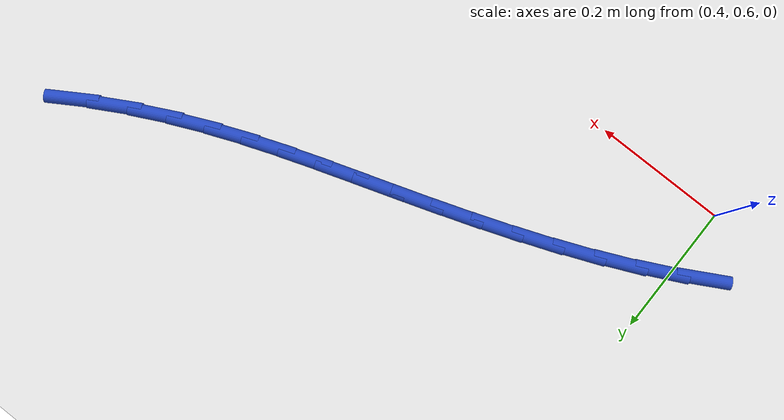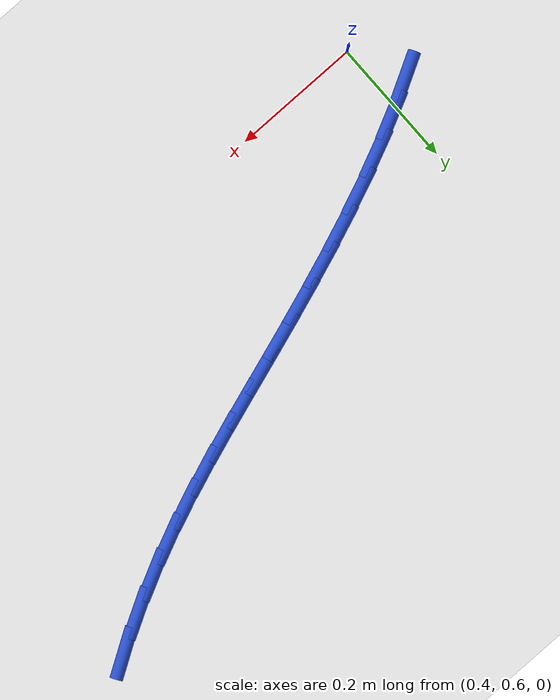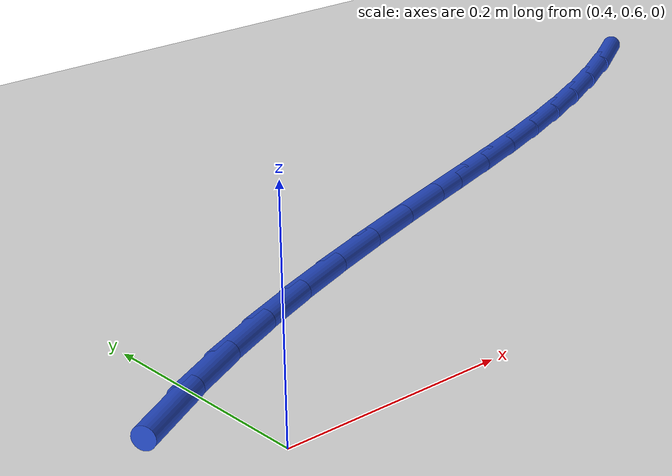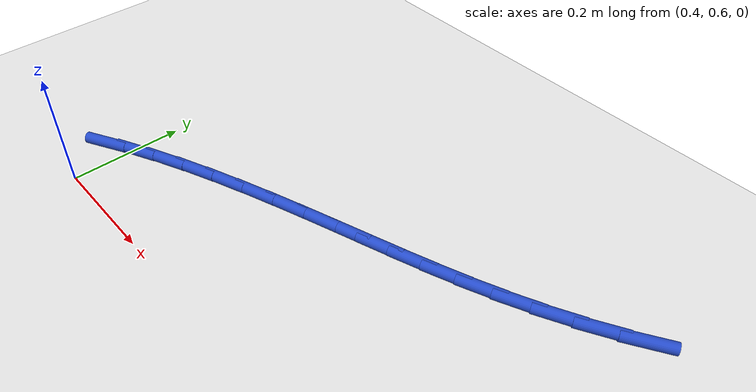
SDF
<sdf version="1.6">
 <world name="default">
  <model name="ground_plane">
   <static>1</static>
   <link name="link">
    <collision name="collision">
     <geometry><plane><normal>0 0 1</normal><size>100 100</size></plane></geometry>
     <surface><friction><ode><mu>100</mu><mu2>50</mu2></ode></friction></surface>
    </collision>
    <visual name="visual">
     <cast_shadows>0</cast_shadows>
     <geometry><plane><normal>0 0 1</normal><size>100 100</size></plane></geometry>
     <material>
      <script><uri>file://media/materials/scripts/gazebo.material</uri><name>Gazebo/WhiteGlow</name></script>
     </material>
    </visual>
   </link>
  </model>
  <model name="line">
   <link name="link_14">
    <pose>0.3600606070345783 0.6843756821959995 0.01 0 1.57 0.5044888558073787</pose>
    <collision name="collision">
     <geometry><cylinder><radius>0.01</radius><length>0.08</length></cylinder></geometry>
    </collision>
    <visual name="visual">
     <material>
      <script><name>Gazebo/Blue</name><uri>file://media/materials/scripts/gazebo.material</uri></script>
     </material>
     <geometry><cylinder><radius>0.01</radius><length>0.08</length></cylinder></geometry>
    </visual>
   </link>
   <link name="link_15">
    <pose>0.4126002058019281 0.7133851797736082 0.01 0 1.57 0.4594383404274867</pose>
    <collision name="collision">
     <geometry><cylinder><radius>0.01</radius><length>0.08</length></cylinder></geometry>
    </collision>
    <visual name="visual">
     <material>
      <script><name>Gazebo/Blue</name><uri>file://media/materials/scripts/gazebo.material</uri></script>
     </material>
     <geometry><cylinder><radius>0.01</radius><length>0.08</length></cylinder></geometry>
    </visual>
   </link>
   <link name="link_16">
    <pose>0.4669219397732638 0.7402608268987017 0.01 0 1.57 0.42151512069455105</pose>
    <collision name="collision">
     <geometry><cylinder><radius>0.01</radius><length>0.08</length></cylinder></geometry>
    </collision>
    <visual name="visual">
     <material>
      <script><name>Gazebo/Blue</name><uri>file://media/materials/scripts/gazebo.material</uri></script>
     </material>
     <geometry><cylinder><radius>0.01</radius><length>0.08</length></cylinder></geometry>
    </visual>
   </link>
   <link name="link_17">
    <pose>0.522577299692662 0.7652161924397977 0.01 0 1.57 0.3901121384482348</pose>
    <collision name="collision">
     <geometry><cylinder><radius>0.01</radius><length>0.08</length></cylinder></geometry>
    </collision>
    <visual name="visual">
     <material>
      <script><name>Gazebo/Blue</name><uri>file://media/materials/scripts/gazebo.material</uri></script>
     </material>
     <geometry><cylinder><radius>0.01</radius><length>0.08</length></cylinder></geometry>
    </visual>
   </link>
   <link name="link_18">
    <pose>0.579117776304199 0.7884648452654139 0.01 0 1.57 0.364744347148214</pose>
    <collision name="collision">
     <geometry><cylinder><radius>0.01</radius><length>0.08</length></cylinder></geometry>
    </collision>
    <visual name="visual">
     <material>
      <script><name>Gazebo/Blue</name><uri>file://media/materials/scripts/gazebo.material</uri></script>
     </material>
     <geometry><cylinder><radius>0.01</radius><length>0.08</length></cylinder></geometry>
    </visual>
   </link>
   <link name="link_19">
    <pose>0.6360948603519516 0.8102203542440687 0.01 0 1.57 0.3450654763592388</pose>
    <collision name="collision">
     <geometry><cylinder><radius>0.01</radius><length>0.08</length></cylinder></geometry>
    </collision>
    <visual name="visual">
     <material>
      <script><name>Gazebo/Blue</name><uri>file://media/materials/scripts/gazebo.material</uri></script>
     </material>
     <geometry><cylinder><radius>0.01</radius><length>0.08</length></cylinder></geometry>
    </visual>
   </link>
   <link name="link_20">
    <pose>0.693060042579996 0.8306962882442795 0.01 0 1.57 0.3308810109781415</pose>
    <collision name="collision">
     <geometry><cylinder><radius>0.01</radius><length>0.08</length></cylinder></geometry>
    </collision>
    <visual name="visual">
     <material>
      <script><name>Gazebo/Blue</name><uri>file://media/materials/scripts/gazebo.material</uri></script>
     </material>
     <geometry><cylinder><radius>0.01</radius><length>0.08</length></cylinder></geometry>
    </visual>
   </link>
   <link name="link_21">
    <pose>0.7495648137324091 0.8501062161345646 0.01 0 1.57 0.32216396254213386</pose>
    <collision name="collision">
     <geometry><cylinder><radius>0.01</radius><length>0.08</length></cylinder></geometry>
    </collision>
    <visual name="visual">
     <material>
      <script><name>Gazebo/Blue</name><uri>file://media/materials/scripts/gazebo.material</uri></script>
     </material>
     <geometry><cylinder><radius>0.01</radius><length>0.08</length></cylinder></geometry>
    </visual>
   </link>
   <link name="link_22">
    <pose>0.8051606684692594 0.8686637087670449 0.01 0 1.57 0.3195003336629219</pose>
    <collision name="collision">
     <geometry><cylinder><radius>0.01</radius><length>0.08</length></cylinder></geometry>
    </collision>
    <visual name="visual">
     <material>
      <script><name>Gazebo/Blue</name><uri>file://media/materials/scripts/gazebo.material</uri></script>
     </material>
     <geometry><cylinder><radius>0.01</radius><length>0.08</length></cylinder></geometry>
    </visual>
   </link>
   <link name="link_23">
    <pose>0.8595433294258027 0.8866553941108655 0.01 0 1.57 0.3248126484290067</pose>
    <collision name="collision">
     <geometry><cylinder><radius>0.01</radius><length>0.08</length></cylinder></geometry>
    </collision>
    <visual name="visual">
     <material>
      <script><name>Gazebo/Blue</name><uri>file://media/materials/scripts/gazebo.material</uri></script>
     </material>
     <geometry><cylinder><radius>0.01</radius><length>0.08</length></cylinder></geometry>
    </visual>
   </link>
   <link name="link_24">
    <pose>0.9129342724334276 0.9046342147161364 0.01 0 1.57 0.33870712931122837</pose>
    <collision name="collision">
     <geometry><cylinder><radius>0.01</radius><length>0.08</length></cylinder></geometry>
    </collision>
    <visual name="visual">
     <material>
      <script><name>Gazebo/Blue</name><uri>file://media/materials/scripts/gazebo.material</uri></script>
     </material>
     <geometry><cylinder><radius>0.01</radius><length>0.08</length></cylinder></geometry>
    </visual>
   </link>
   <link name="link_25">
    <pose>0.9656747378168392 0.9232137785384975 0.01 0 1.57 0.3609794510947293</pose>
    <collision name="collision">
     <geometry><cylinder><radius>0.01</radius><length>0.08</length></cylinder></geometry>
    </collision>
    <visual name="visual">
     <material>
      <script><name>Gazebo/Blue</name><uri>file://media/materials/scripts/gazebo.material</uri></script>
     </material>
     <geometry><cylinder><radius>0.01</radius><length>0.08</length></cylinder></geometry>
    </visual>
   </link>
   <link name="link_26">
    <pose>1.0181059659007434 0.9430076935335898 0.01 0 1.57 0.3909226432686043</pose>
    <collision name="collision">
     <geometry><cylinder><radius>0.01</radius><length>0.08</length></cylinder></geometry>
    </collision>
    <visual name="visual">
     <material>
      <script><name>Gazebo/Blue</name><uri>file://media/materials/scripts/gazebo.material</uri></script>
     </material>
     <geometry><cylinder><radius>0.01</radius><length>0.08</length></cylinder></geometry>
    </visual>
   </link>
   <link name="link_27">
    <pose>1.0705691970098445 0.9646295676570527 0.01 0 1.57 0.4273623004761647</pose>
    <collision name="collision">
     <geometry><cylinder><radius>0.01</radius><length>0.08</length></cylinder></geometry>
    </collision>
    <visual name="visual">
     <material>
      <script><name>Gazebo/Blue</name><uri>file://media/materials/scripts/gazebo.material</uri></script>
     </material>
     <geometry><cylinder><radius>0.01</radius><length>0.08</length></cylinder></geometry>
    </visual>
   </link>
   <link name="link_28">
    <pose>1.1234056714688492 0.9886930088645267 0.01 0 1.57 0.468760600041908</pose>
    <collision name="collision">
     <geometry><cylinder><radius>0.01</radius><length>0.08</length></cylinder></geometry>
    </collision>
    <visual name="visual">
     <material>
      <script><name>Gazebo/Blue</name><uri>file://media/materials/scripts/gazebo.material</uri></script>
     </material>
     <geometry><cylinder><radius>0.01</radius><length>0.08</length></cylinder></geometry>
    </visual>
   </link>
   <link name="link_29">
    <pose>1.1769566296024614 1.0158116251116518 0.01 0 1.57 0.5133785589665116</pose>
    <collision name="collision">
     <geometry><cylinder><radius>0.01</radius><length>0.08</length></cylinder></geometry>
    </collision>
    <visual name="visual">
     <material>
      <script><name>Gazebo/Blue</name><uri>file://media/materials/scripts/gazebo.material</uri></script>
     </material>
     <geometry><cylinder><radius>0.01</radius><length>0.08</length></cylinder></geometry>
    </visual>
   </link>
   <link name="link_30">
    <pose>1.2315633117353875 1.046599024354069 0.01 0 1.57 0.558409688508435</pose>
    <collision name="collision">
     <geometry><cylinder><radius>0.01</radius><length>0.08</length></cylinder></geometry>
    </collision>
    <visual name="visual">
     <material>
      <script><name>Gazebo/Blue</name><uri>file://media/materials/scripts/gazebo.material</uri></script>
     </material>
     <geometry><cylinder><radius>0.01</radius><length>0.08</length></cylinder></geometry>
    </visual>
   </link>
  </model>
 </world>
</sdf>
